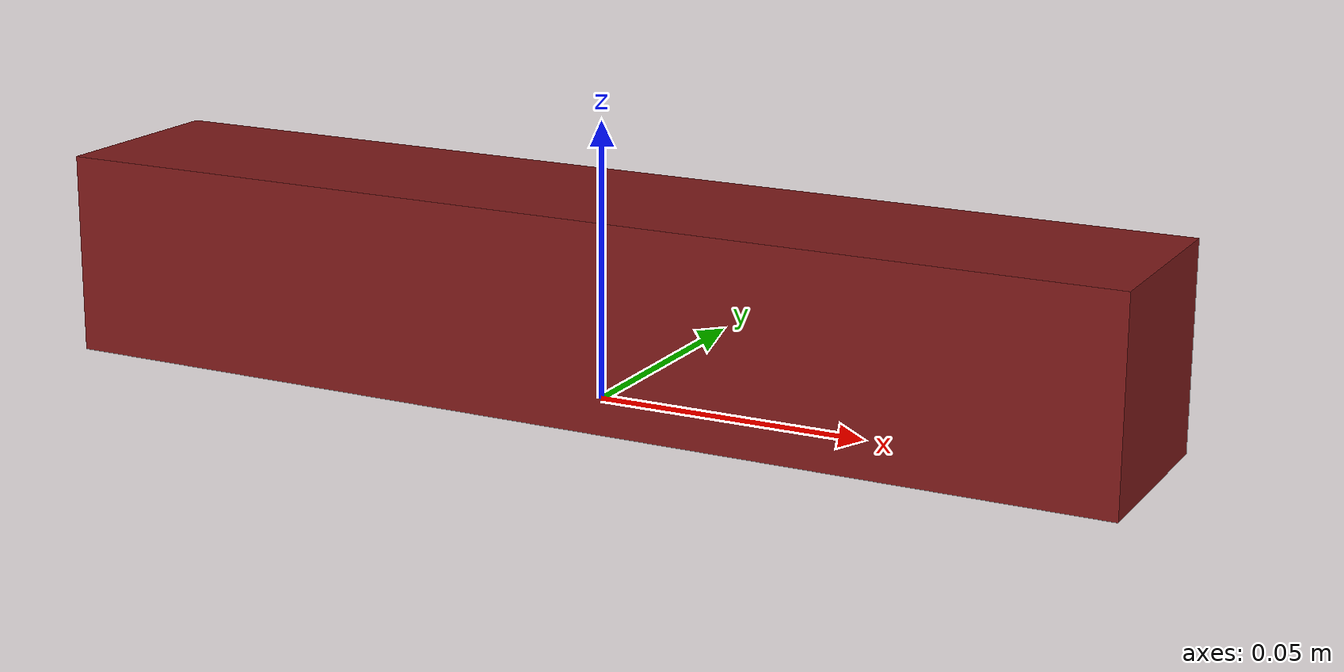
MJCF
<mujoco model="peg_v1_3">

  <compiler angle="radian" autolimits="true" inertiafromgeom="true"/>

  <default>
    <default class="peg_v1_3">
      <default class="vis">
        <geom contype="0" conaffinity="0" group="2" density="0" material="peg_v1_3_mat"/>
      </default>
      <default class="col">
        <geom contype="1" conaffinity="1" group="3" priority="0"
              friction="0.3 0.02 0.001" solref="0.002 1" solimp="0.995 0.995 0.0001"
              condim="6" rgba="0.5 0.1 0.1 0.5"/>
      </default>
    </default>
  </default>

  <asset><material name="peg_v1_3_mat" rgba="0.5 0.1 0.1 1.0"/></asset>

  <worldbody>
    <body name="peg_v1_3" pos="0 0 0" childclass="peg_v1_3">
      <freejoint name="peg_v1_3_joint"/>
      <geom name="peg_v1_3_vis_main" type="box" class="vis" pos="0.000000 0.000000 0.018500" size="0.100000 0.018500 0.018500"/>
      <geom name="peg_v1_3_col_main" type="box" class="col" pos="0.000000 0.000000 0.018500" size="0.100000 0.018500 0.018500"/>
    </body>
  </worldbody>
</mujoco>
